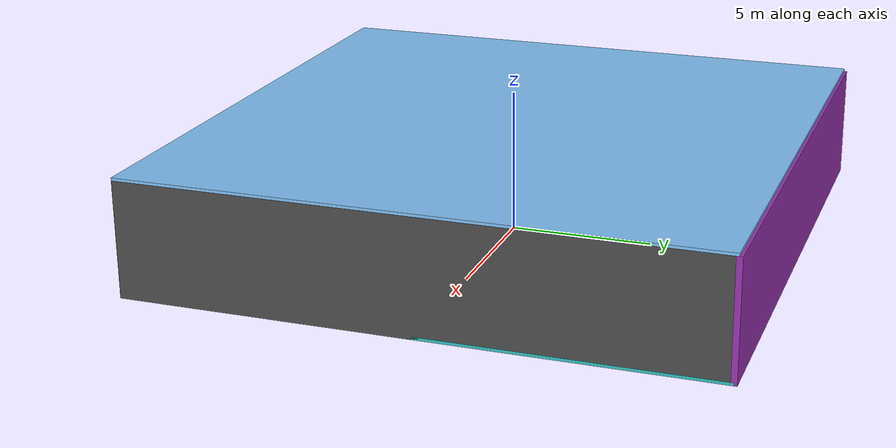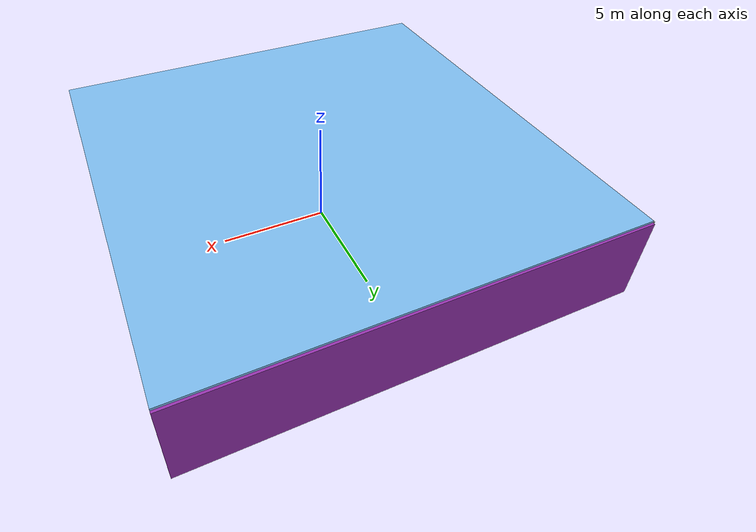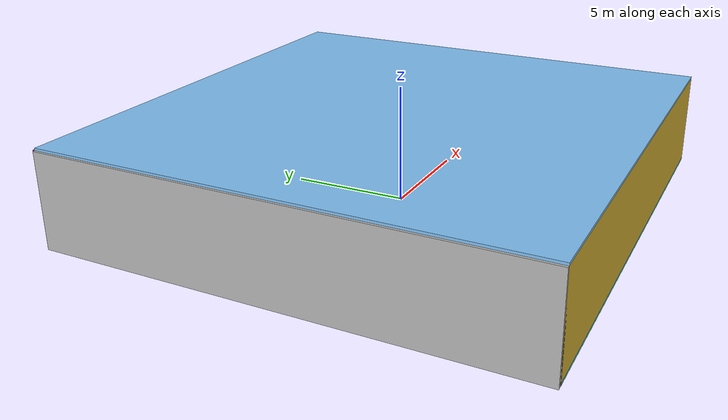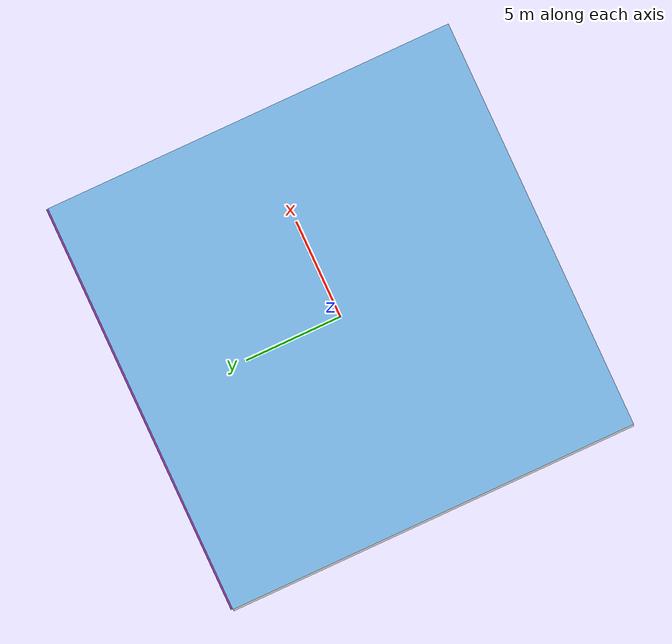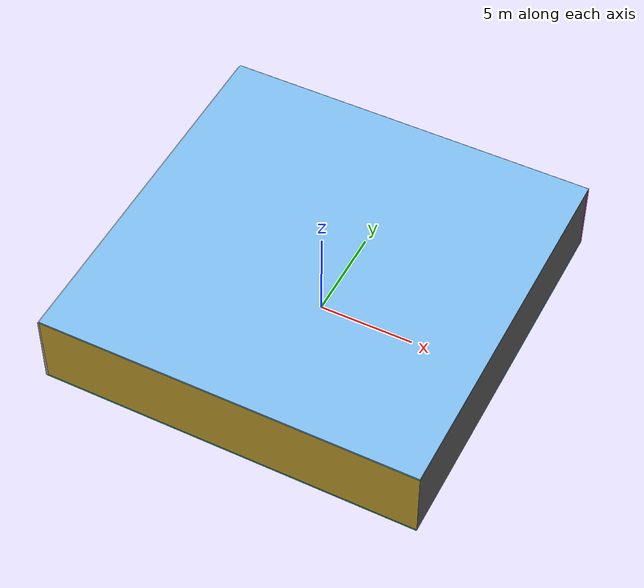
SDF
<sdf version="1.4">
 <world name="default">
  <physics type="ode">
   <max_step_size>0.001</max_step_size>
   <real_time_factor>1</real_time_factor>
   <real_time_update_rate>1000</real_time_update_rate>
   <gravity>0 0 -9.8</gravity>
  </physics>
  <scene><ambient>0.4 0.4 0.4 1</ambient><background>0.7 0.7 0.7 1</background><shadows>1</shadows></scene>
  <model name="Surrounding">
   <static>1</static>
   <link name="Ceiling">
    <collision name="Ceiling_Collision"><geometry><box><size>20 20 0.1</size></box></geometry></collision>
    <visual name="Ceiling_Visual">
     <geometry><box><size>20 20 0.1</size></box></geometry>
     <material>
      <script><uri>file://media/materials/scripts/gazebo.material</uri><name>Gazebo/SkyBlue</name></script>
     </material>
    </visual>
    <pose>0 0 4.05 0 0 0</pose>
   </link>
   <link name="Wall_South">
    <collision name="Wall_South_Collision">
     <geometry><box><size>20 0 4</size></box></geometry>
     <pose>0 0 2 0 -0 0</pose>
    </collision>
    <visual name="Wall_South_Visual">
     <pose>0 0 2 0 -0 0</pose>
     <geometry><box><size>20 0 4</size></box></geometry>
     <material>
      <script><uri>file://media/materials/scripts/gazebo.material</uri><name>Gazebo/Gold</name></script>
     </material>
    </visual>
    <velocity_decay><linear>0</linear><angular>0</angular></velocity_decay>
    <pose>0 -10 0 0 -0 0</pose>
   </link>
   <link name="Wall_East">
    <collision name="Wall_21_Collision">
     <geometry><box><size>20 0 4</size></box></geometry>
     <pose>0 0 2 0 -0 0</pose>
    </collision>
    <visual name="Wall_21_Visual">
     <pose>0 0 2 0 -0 0</pose>
     <geometry><box><size>20 0 4</size></box></geometry>
     <material>
      <script><uri>file://media/materials/scripts/gazebo.material</uri><name>Gazebo/Road</name></script>
     </material>
    </visual>
    <velocity_decay><linear>0</linear><angular>0</angular></velocity_decay>
    <pose>10 0 0 0 -0 1.5708</pose>
   </link>
   <link name="Wall_North">
    <collision name="Wall_22_Collision">
     <geometry><box><size>20 0.2 4</size></box></geometry>
     <pose>0 0 2 0 -0 0</pose>
    </collision>
    <visual name="Wall_22_Visual">
     <pose>0 0 2 0 -0 0</pose>
     <geometry><box><size>20 0.2 4</size></box></geometry>
     <material>
      <script><uri>file://media/materials/scripts/gazebo.material</uri><name>Gazebo/PurpleGlow</name></script>
     </material>
    </visual>
    <velocity_decay><linear>0</linear><angular>0</angular></velocity_decay>
    <pose>0 10 0 0 -0 0</pose>
   </link>
   <link name="Wall_West">
    <collision name="Wall_23_Collision">
     <geometry><box><size>20 0.2 4</size></box></geometry>
     <pose>0 0 2 0 -0 0</pose>
    </collision>
    <visual name="Wall_23_Visual">
     <pose>0 0 2 0 -0 0</pose>
     <geometry><box><size>20 0.2 4</size></box></geometry>
     <material>
      <script><uri>file://media/materials/scripts/gazebo.material</uri><name>Gazebo/LightOff</name></script>
     </material>
    </visual>
    <velocity_decay><linear>0</linear><angular>0</angular></velocity_decay>
    <pose>-10 0 0 0 0 -1.5708</pose>
   </link>
   <link name="Ground_link">
    <collision name="collision">
     <pose>0 0 .05 0 -0 0</pose>
     <geometry><box><size>20 20 0.1</size></box></geometry>
    </collision>
    <visual name="visual">
     <pose>0 0 .05 0 -0 0</pose>
     <geometry><box><size>20 20 0.1</size></box></geometry>
     <material>
      <script>
       <uri>file://media/materials/scripts/gazebo.material</uri>
       <name>Gazebo/TurquoiseGlowOutline</name>
      </script>
     </material>
    </visual>
   </link>
   <static>1</static>
  </model>
  <spherical_coordinates>
   <surface_model>EARTH_WGS84</surface_model>
   <latitude_deg>0</latitude_deg>
   <longitude_deg>0</longitude_deg>
   <elevation>0</elevation>
   <heading_deg>0</heading_deg>
  </spherical_coordinates>
  <light name="lightball_0" type="diffuse">
   <diffuse>0.8 0.8 0.8 1</diffuse>
   <specular>0.2 0.2 0.2 1</specular>
   <attenuation>
    <range>100</range>
    <constant>0.7</constant>
    <linear>0.01</linear>
    <quadratic>0.001</quadratic>
   </attenuation>
   <direction>-0.5 0.1 -0.9</direction>
   <pose>-9.65497072672 8.84963738096 1.3538571253 0 0 0</pose>
  </light>
  <light name="lightball_1" type="diffuse">
   <diffuse>0.8 0.8 0.8 1</diffuse>
   <specular>0.2 0.2 0.2 1</specular>
   <attenuation>
    <range>100</range>
    <constant>0.7</constant>
    <linear>0.01</linear>
    <quadratic>0.001</quadratic>
   </attenuation>
   <direction>-0.5 0.1 -0.9</direction>
   <pose>-3.43045756473 -1.83781845807 1.83667816975 0 0 0</pose>
  </light>
  <light name="lightball_2" type="diffuse">
   <diffuse>0.8 0.8 0.8 1</diffuse>
   <specular>0.2 0.2 0.2 1</specular>
   <attenuation>
    <range>100</range>
    <constant>0.7</constant>
    <linear>0.01</linear>
    <quadratic>0.001</quadratic>
   </attenuation>
   <direction>-0.5 0.1 -0.9</direction>
   <pose>0.413981552989 -7.12795451077 2.14753962205 0 0 0</pose>
  </light>
  <light name="lightball_3" type="diffuse">
   <diffuse>0.8 0.8 0.8 1</diffuse>
   <specular>0.2 0.2 0.2 1</specular>
   <attenuation>
    <range>100</range>
    <constant>0.7</constant>
    <linear>0.01</linear>
    <quadratic>0.001</quadratic>
   </attenuation>
   <direction>-0.5 0.1 -0.9</direction>
   <pose>7.40331491206 -0.0728744088815 1.67841165935 0 0 0</pose>
  </light>
  <light name="lightball_4" type="diffuse">
   <diffuse>0.8 0.8 0.8 1</diffuse>
   <specular>0.2 0.2 0.2 1</specular>
   <attenuation>
    <range>100</range>
    <constant>0.7</constant>
    <linear>0.01</linear>
    <quadratic>0.001</quadratic>
   </attenuation>
   <direction>-0.5 0.1 -0.9</direction>
   <pose>-3.38926973491 2.44841770223 3.7476940011 0 0 0</pose>
  </light>
  <light name="lightball_5" type="diffuse">
   <diffuse>0.8 0.8 0.8 1</diffuse>
   <specular>0.2 0.2 0.2 1</specular>
   <attenuation>
    <range>100</range>
    <constant>0.7</constant>
    <linear>0.01</linear>
    <quadratic>0.001</quadratic>
   </attenuation>
   <direction>-0.5 0.1 -0.9</direction>
   <pose>-1.70871628966 6.96572475313 1.83660857843 0 0 0</pose>
  </light>
  <light name="lightball_6" type="diffuse">
   <diffuse>0.8 0.8 0.8 1</diffuse>
   <specular>0.2 0.2 0.2 1</specular>
   <attenuation>
    <range>100</range>
    <constant>0.7</constant>
    <linear>0.01</linear>
    <quadratic>0.001</quadratic>
   </attenuation>
   <direction>-0.5 0.1 -0.9</direction>
   <pose>0.270531031148 6.96434473663 2.73737654012 0 0 0</pose>
  </light>
  <light name="lightball_7" type="diffuse">
   <diffuse>0.8 0.8 0.8 1</diffuse>
   <specular>0.2 0.2 0.2 1</specular>
   <attenuation>
    <range>100</range>
    <constant>0.7</constant>
    <linear>0.01</linear>
    <quadratic>0.001</quadratic>
   </attenuation>
   <direction>-0.5 0.1 -0.9</direction>
   <pose>8.42231216752 -1.84004769732 2.02692123671 0 0 0</pose>
  </light>
  <light name="lightball_8" type="diffuse">
   <diffuse>0.8 0.8 0.8 1</diffuse>
   <specular>0.2 0.2 0.2 1</specular>
   <attenuation>
    <range>100</range>
    <constant>0.7</constant>
    <linear>0.01</linear>
    <quadratic>0.001</quadratic>
   </attenuation>
   <direction>-0.5 0.1 -0.9</direction>
   <pose>-8.73462782941 -7.62864072127 2.43321527493 0 0 0</pose>
  </light>
  <include><uri>model://cabinet</uri><pose>-8.27125734073 -1.12027260955 0 0 0 2.64463865932</pose></include>
  <include>
   <uri>model://construction_cone</uri>
   <pose>-4.02915616174 -7.19466935508 0 0 0 2.24434711267</pose>
  </include>
  <include>
   <uri>model://construction_cone</uri>
   <pose>-0.795434053227 0.850450348868 0 0 0 2.12005369242</pose>
  </include>
  <include><uri>model://cabinet</uri><pose>7.4385113836 -3.8109246951 0 0 0 1.75940524357</pose></include>
 </world>
</sdf>

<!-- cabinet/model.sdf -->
<sdf version="1.5">
  <model name="cabinet">
    <static>true</static>
    <link name="cabinet_bottom_plate">
      <inertial>
        <pose>0 0 -1 0 0 0</pose>
        <inertia>
          <ixx>2.050000</ixx>
          <ixy>0</ixy>
          <ixz>0</ixz>
          <iyy>2.050000</iyy>
          <iyz>0</iyz>
          <izz>2.050000</izz>
        </inertia>
        <mass>25.000000</mass>
      </inertial>
      <collision name="cabinet_bottom_plate_geom">
        <pose>0 0 0.010000 0 0 0</pose>
        <geometry>
          <box>
            <size>0.450000 0.450000 0.020000</size>
          </box>
        </geometry>
      </collision>
      <visual name="cabinet_bottom_plate_geom_visual">
        <pose>0 0 0.010000 0 0 0</pose>
        <geometry>
          <box>
            <size>0.450000 0.450000 0.020000</size>
          </box>
        </geometry>
        <material>
          <script>
            <uri>model://media/materials/scripts/gazebo.material</uri>
            <name>Gazebo/Wood</name>
          </script>
        </material>
      </visual>
      <collision name="cabinet_bottom_plate_geom_cabinet_back_plate">
        <pose>0.235000 0 0.510000 0 0 0</pose>
        <geometry>
          <box>
            <size>0.020000 0.450000 1.020000</size>
          </box>
        </geometry>
      </collision>
      <visual name="cabinet_bottom_plate_geom_cabinet_back_plate_visual">
        <pose>0.235000 0 0.510000 0 0 0</pose>
        <geometry>
          <box>
            <size>0.020000 0.450000 1.020000</size>
          </box>
        </geometry>
        <material>
          <script>
            <uri>model://media/materials/scripts/gazebo.material</uri>
            <name>Gazebo/Wood</name>
          </script>
        </material>
      </visual>
      <collision name="cabinet_bottom_plate_geom_cabinet_left_plate">
        <pose>0 0.235000 0.510000 0 0 0</pose>
        <geometry>
          <box>
            <size>0.450000 0.020000 1.020000</size>
          </box>
        </geometry>
      </collision>
      <visual name="cabinet_bottom_plate_geom_cabinet_left_plate_visual">
        <pose>0 0.235000 0.510000 0 0 0</pose>
        <geometry>
          <box>
            <size>0.450000 0.020000 1.020000</size>
          </box>
        </geometry>
        <material>
          <script>
            <uri>model://media/materials/scripts/gazebo.material</uri>
            <name>Gazebo/Wood</name>
          </script>
        </material>
      </visual>
      <collision name="cabinet_bottom_plate_geom_cabinet_middle_plate">
        <pose>0 0 0.510000 0 0 0</pose>
        <geometry>
          <box>
            <size>0.450000 0.450000 0.020000</size>
          </box>
        </geometry>
      </collision>
      <visual name="cabinet_bottom_plate_geom_cabinet_middle_plate_visual">
        <pose>0 0 0.510000 0 0 0</pose>
        <geometry>
          <box>
            <size>0.450000 0.450000 0.020000</size>
          </box>
        </geometry>
        <material>
          <script>
            <uri>model://media/materials/scripts/gazebo.material</uri>
            <name>Gazebo/Wood</name>
          </script>
        </material>
      </visual>
      <collision name="cabinet_bottom_plate_geom_cabinet_right_plate">
        <pose>0 -0.235000 0.510000 0 0 0</pose>
        <geometry>
          <box>
            <size>0.450000 0.020000 1.020000</size>
          </box>
        </geometry>
      </collision>
      <visual name="cabinet_bottom_plate_geom_cabinet_right_plate_visual">
        <pose>0 -0.235000 0.510000 0 0 0</pose>
        <geometry>
          <box>
            <size>0.450000 0.020000 1.020000</size>
          </box>
        </geometry>
        <material>
          <script>
            <uri>model://media/materials/scripts/gazebo.material</uri>
            <name>Gazebo/Wood</name>
          </script>
        </material>
      </visual>
      <collision name="cabinet_bottom_plate_geom_cabinet_top_plate">
        <pose>0 0 1.010000 0 0 0</pose>
        <geometry>
          <box>
            <size>0.450000 0.450000 0.020000</size>
          </box>
        </geometry>
      </collision>
      <visual name="cabinet_bottom_plate_geom_cabinet_top_plate_visual">
        <pose>0 0 1.010000 0 0 0</pose>
        <geometry>
          <box>
            <size>0.450000 0.450000 0.020000</size>
          </box>
        </geometry>
        <material>
          <script>
            <uri>model://media/materials/scripts/gazebo.material</uri>
            <name>Gazebo/Wood</name>
          </script>
        </material>
      </visual>
    </link>
  </model>
</sdf>

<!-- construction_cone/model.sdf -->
<sdf version="1.5">
  <model name="Construction Cone">
    <link name="link">
      <collision name="collision">
        <geometry>
          <mesh>
            <scale>10 10 10</scale>
            <uri>file://isr-testbed/construction_cone/meshes/construction_cone.dae</uri>
          </mesh>
        </geometry>
      </collision>
      <visual name="visual">
        <geometry>
          <mesh>
            <scale>10 10 10</scale>
            <uri>file://isr-testbed/construction_cone/meshes/construction_cone.dae</uri>
          </mesh>
        </geometry>
      </visual>
    </link>
  </model>
</sdf>
